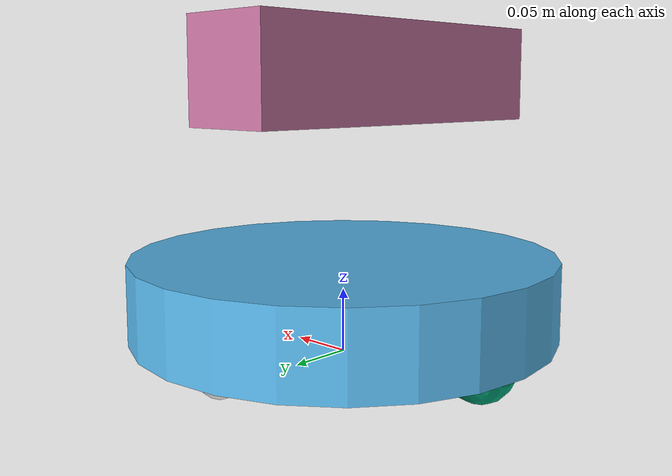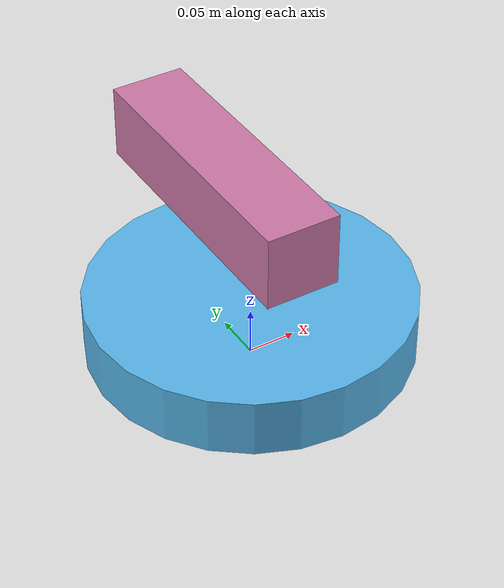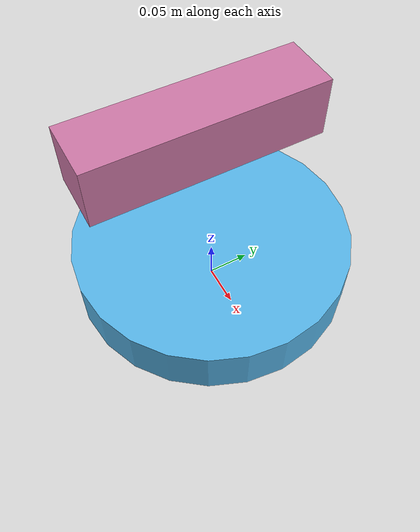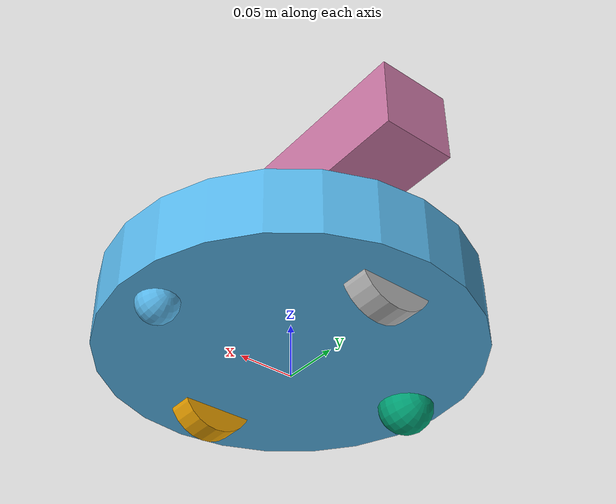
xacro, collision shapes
<?xml version="1.0" ?>
<robot name="create_2" xmlns:xacro="http://ros.org/wiki/xacro">
  <xacro:include filename="$(find create2_description)/urdf/create_base.urdf.xacro" />
  <xacro:include filename="$(find create2_description)/urdf/create_2_gazebo.urdf.xacro" />

  <xacro:include filename="$(find create2_description)/urdf/kinect.urdf.xacro" />

  <xacro:create_base wheel_separation="0.235" base_diameter="0.3485">
    <mesh filename="package://create2_description/meshes/create_2.dae" />
  </xacro:create_base>

  <xacro:sensor_kinect parent="base_link"/>

</robot>

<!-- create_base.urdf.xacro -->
<robot xmlns:xacro="http://ros.org/wiki/xacro">
  <xacro:property name="PI" value="3.1415926535897931" />

  <xacro:macro name="create_wheel" params="prefix y_offset wheel_radius wheel_width">
    <link name="${prefix}_wheel_link">
    <inertial>
      <origin xyz="0 0 0" />
      <mass value="0.01" />
      <inertia ixx="0.001" ixy="0.0" ixz="0.0" iyy="0.001" iyz="0.0" izz="0.001" />
    </inertial>

    <visual>
      <origin xyz="0 0 0" rpy="0 ${PI/2} ${PI/2}" />
      <geometry>
        <cylinder radius="${wheel_radius}" length="${wheel_width}" />
      </geometry>
    </visual>

    <collision>
      <origin xyz="0 0 0" rpy="0 ${PI/2} ${PI/2}" />
      <geometry>
        <cylinder radius="${wheel_radius}" length="${wheel_width}" />
      </geometry>
    </collision>
    </link>

   <joint name="${prefix}_wheel_joint" type="continuous">
      <origin xyz="0 ${y_offset} 0.015" rpy="0 0 0" />
      <parent link="base_link" />
      <child link="${prefix}_wheel_link" />
      <axis xyz="0 1 0" />
    </joint>
  </xacro:macro>

  <xacro:macro name="create_base" params="diffdrive_update_rate:=40 wheel_separation wheel_radius:=0.036 wheel_width:=0.024 wheel_torque:=1.0 wheel_accel:=1.8 mass_kg:=3.5 base_diameter *mesh">
    <xacro:include filename="$(find create2_description)/urdf/create_base_gazebo.urdf.xacro" />

    <link name="base_footprint">
    <visual>
      <origin xyz="0 0 0" rpy="0 0 0" />
      <geometry>
        <box size="0.001 0.001 0.001" />
      </geometry>
      <material name="Green" />
    </visual>

    <collision>
      <origin xyz="0 0 0.017" rpy="0 0 0" />
      <geometry>
        <box size="0.001 0.001 0.001" />
      </geometry>
    </collision>
    </link>

    <link name="base_link">
    <inertial>
      <mass value="2" />
      <origin xyz="0 0 0.0" />
      <inertia ixx="0.01" ixy="0.0" ixz="0.0" iyy="0.01" iyz="0.0" izz="0.5" />
    </inertial>

    <visual>
      <origin xyz=" 0 0 0.0308" rpy="0 0 0" />
      <geometry>
        <xacro:insert_block name="mesh" />
      </geometry>
    </visual>

    <collision>
      <origin xyz="0.0 0.0 0.0308" rpy="0 0 0" />
      <geometry>
        <cylinder length="0.0611632" radius="0.16495" />
      </geometry>
    </collision>
    </link>

    <link name="wall_sensor_link">
    <inertial>
      <mass value="0.01" />
      <origin xyz="0 0 0" />
      <inertia ixx="0.001" ixy="0.0" ixz="0.0" iyy="0.001" iyz="0.0" izz="0.001" />
    </inertial>
    </link>

    <link name="left_cliff_sensor_link">
    <inertial>
      <mass value="0.01" />
      <origin xyz="0 0 0" />
      <inertia ixx="0.001" ixy="0.0" ixz="0.0" iyy="0.001" iyz="0.0" izz="0.001" />
    </inertial>
    </link>

    <link name="right_cliff_sensor_link">
    <inertial>
      <mass value="0.01" />
      <origin xyz="0 0 0" />
      <inertia ixx="0.001" ixy="0.0" ixz="0.0" iyy="0.001" iyz="0.0" izz="0.001" />
    </inertial>
    </link>

    <link name="leftfront_cliff_sensor_link">
    <inertial>
      <mass value="0.01" />
      <origin xyz="0 0 0" />
      <inertia ixx="1.0" ixy="0.0" ixz="0.0" iyy="0.01" iyz="0.0" izz="0.01" />
    </inertial>
    </link>

    <link name="rightfront_cliff_sensor_link">
    <inertial>
      <mass value="0.01" />
      <origin xyz="0 0 0" />
      <inertia ixx="0.001" ixy="0.0" ixz="0.0" iyy="0.001" iyz="0.0" izz="0.001" />
    </inertial>
    </link>

    <joint name="base_footprint_joint" type="fixed">
      <origin xyz="0 0 0.017" rpy="0 0 0" />
      <parent link="base_footprint" />
      <child link="base_link" />
    </joint>

    <joint name="base_wall_sensor_joint" type="fixed">
      <origin xyz="0.09 -0.120 0.042" rpy="0 0 -1.0" />
      <parent link="base_link" />
      <child link="wall_sensor_link" />
    </joint>

    <joint name="base_left_cliff_sensor_joint" type="fixed">
      <origin xyz="0.07 0.14 0.01" rpy="0 ${PI/2} 0" />
      <parent link="base_link" />
      <child link="left_cliff_sensor_link" />
    </joint>

    <joint name="base_right_cliff_sensor_joint" type="fixed">
      <origin xyz="0.07 -0.14 0.01" rpy="0 ${PI/2} 0" />
      <parent link="base_link" />
      <child link="right_cliff_sensor_link" />
    </joint>

    <joint name="base_leftfront_cliff_sensor_joint" type="fixed">
      <origin xyz="0.15 0.04 0.01" rpy="0 ${PI/2} 0" />
      <parent link="base_link" />
      <child link="leftfront_cliff_sensor_link" />
    </joint>

    <joint name="base_rightfront_cliff_sensor_joint" type="fixed">
      <origin xyz="0.15 -0.04 0.01" rpy="0 ${PI/2} 0" />
      <parent link="base_link" />
      <child link="rightfront_cliff_sensor_link" />
    </joint>

    <xacro:create_wheel prefix="left" y_offset="${wheel_separation / 2}" wheel_radius="${wheel_radius}" wheel_width="${wheel_width}"/>
    <xacro:create_wheel prefix="right" y_offset="${wheel_separation / -2}" wheel_radius="${wheel_radius}" wheel_width="${wheel_width}"/>

    <link name="front_wheel_link">
    <inertial>
      <origin xyz="0 0 0" />
      <mass value="0.01" />
      <inertia ixx="0.001" ixy="0.0" ixz="0.0" iyy="0.001" iyz="0.0" izz="0.001" />
    </inertial>

    <visual>
      <origin xyz="0 0 0" rpy="0 ${PI/2} ${PI/2}" />
      <geometry>
        <sphere radius="0.018" />
      </geometry>
    </visual>

    <collision>
      <origin xyz="0 0 0" rpy="0 ${PI/2} ${PI/2}" />
      <geometry>
        <sphere radius="0.018" />
      </geometry>
    </collision>
    </link>

    <link name="back_wheel_link">
    <inertial>
      <origin xyz="0 0 0" />
      <mass value="0.01" />
      <inertia ixx="0.001" ixy="0.0" ixz="0.0" iyy="0.001" iyz="0.0" izz="0.001" />
    </inertial>

    <visual>
      <origin xyz="0 0 0" rpy="0 ${PI/2} ${PI/2}" />
      <geometry>
        <sphere radius="0.025" />
      </geometry>
    </visual>

    <collision>
      <origin xyz="0 0 0" rpy="0 ${PI/2} ${PI/2}" />
      <geometry>
        <sphere radius="0.025" />
      </geometry>
    </collision>
    </link>

    <!-- fixed because there's no transmission -->
    <joint name="front_castor_joint" type="fixed">
      <origin xyz="0.13 0 0.0" rpy="0 0 0" />
      <parent link="base_link" />
      <child link="front_wheel_link" />
      <axis xyz="0 1 0" />
    </joint>

    <joint name="back_castor_joint" type="fixed">
      <origin xyz="-0.13 0 0.0" rpy="0 0 0" />
      <parent link="base_link" />
      <child link="back_wheel_link" />
      <axis xyz="0 1 0" />
    </joint>

    <joint name="gyro_joint" type="fixed">
      <axis xyz="0 1 0" />
      <origin xyz="0 0 0.04" rpy="0 0 0" />
      <parent link="base_link" />
      <child link="gyro_link" />
    </joint>
    <link name="gyro_link">
    <inertial>
      <mass value="0.001" />
      <origin xyz="0 0 0" rpy="0 0 0" />
      <inertia ixx="0.0001" ixy="0" ixz="0" iyy="0.000001" iyz="0" izz="0.0001" />
    </inertial>
    </link>

    <!-- Simulation sensors -->
    <xacro:sim_create_base/>
    <xacro:sim_create_wall_sensor/>
    <xacro:sim_create_cliff_sensors/>
    <xacro:sim_imu/>
  </xacro:macro>
</robot>

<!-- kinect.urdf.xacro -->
<root name="sensor_kinect" xmlns:xacro="http://ros.org/wiki/xacro">
	<xacro:include filename="$(find create2_description)/urdf/kinect_gazebo.xacro" />
  <xacro:include filename="$(find create2_description)/urdf/kinect_properties.urdf.xacro"/>

  <!-- camera_name has to be unique! -->
  <xacro:kinect_sensor link_name="camera_depth_frame" camera_name="camera1"
                       frame_name="camera_depth_optical_frame"/>

	<!-- Parameterised in part by the values in kinect_properties.urdf.xacro -->
	<xacro:macro name="sensor_kinect" params="parent">
		<joint name="camera_rgb_joint" type="fixed">
		      <origin xyz="${cam_px} ${cam_py} ${cam_pz}"
			      rpy="${cam_or} ${cam_op} ${cam_oy}"/>
			<parent link="${parent}"/>
			<child link="camera_rgb_frame" />
		</joint>
		<link name="camera_rgb_frame">
			<inertial>
				<mass value="0.001" />
				<origin xyz="0 0 0" />
				<inertia ixx="0.0001" ixy="0.0" ixz="0.0" iyy="0.0001" iyz="0.0" izz="0.0001" />
			</inertial>
		</link>
		<joint name="camera_rgb_optical_joint" type="fixed">
			<origin xyz="0 0 0" rpy="${-M_PI/2} 0 ${-M_PI/2}" />
			<parent link="camera_rgb_frame" />
			<child link="camera_rgb_optical_frame" />
		</joint>
		<link name="camera_rgb_optical_frame">
			<inertial>
				<mass value="0.001" />
				<origin xyz="0 0 0" />
				<inertia ixx="0.0001" ixy="0.0" ixz="0.0" iyy="0.0001" iyz="0.0" izz="0.0001" />
			</inertial>
		</link>

		<joint name="camera_joint" type="fixed">
			<origin xyz="-0.031 ${-cam_py} 0" rpy="0 0 0"/>
			<parent link="camera_rgb_frame"/>
			<child link="camera_link"/>
		</joint>

		<link name="camera_link">
			<visual>
			 <origin xyz="0 0 0.1" rpy="0 0 ${M_PI/2}"/>
				<geometry>
				<mesh filename="package://create2_description/meshes/kinect.dae"/>
				</geometry>
			</visual>
			<collision>
				<origin xyz="0.0 0.0 0.1" rpy="0 0 0"/>
				<geometry>
					<box size="0.07271 0.27794 0.073"/>
				</geometry>
			</collision>
			<inertial>
				<mass value="0.001" />
				<origin xyz="0 0 0" />
				<inertia ixx="0.0001" ixy="0.0" ixz="0.0" iyy="0.0001" iyz="0.0" izz="0.0001" />
			</inertial>
		</link>

		<joint name="camera_depth_joint" type="fixed">
			<origin xyz="0 ${2 * -cam_py} 0" rpy="0 0 0" />
			<parent link="camera_rgb_frame" />
			<child link="camera_depth_frame" />
		</joint>
		<link name="camera_depth_frame">
			<inertial>
				<mass value="0.001" />
				<origin xyz="0 0 0" />
				<inertia ixx="0.0001" ixy="0.0" ixz="0.0" iyy="0.0001" iyz="0.0" izz="0.0001" />
			</inertial>
		</link>
		<joint name="camera_depth_optical_joint" type="fixed">
			<origin xyz="0 0 0" rpy="${-M_PI/2} 0 ${-M_PI/2}" />
			<parent link="camera_depth_frame" />
			<child link="camera_depth_optical_frame" />
		</joint>
		<link name="camera_depth_optical_frame">
			<inertial>
				<mass value="0.001" />
				<origin xyz="0 0 0" />
				<inertia ixx="0.0001" ixy="0.0" ixz="0.0" iyy="0.0001" iyz="0.0" izz="0.0001" />
			</inertial>
		</link>
	</xacro:macro>
</root>

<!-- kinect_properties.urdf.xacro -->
<root>
  <!--
	  Translation and rotation of camera from its base link
   -->
	<property name="cam_px" value="0" />
	<property name="cam_py" value="0" />
	<property name="cam_pz" value="0.1" />
	<property name="cam_or" value="0" />
	<property name="cam_op" value="0" />
	<property name="cam_oy" value="0" />
</root>
